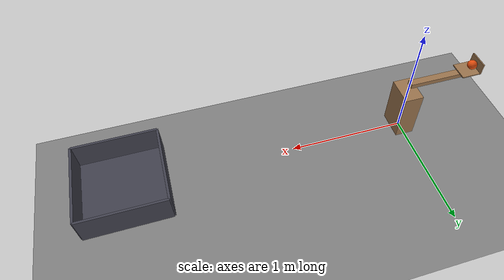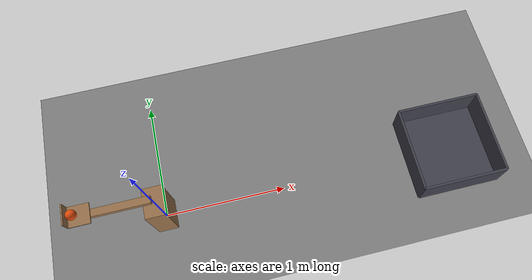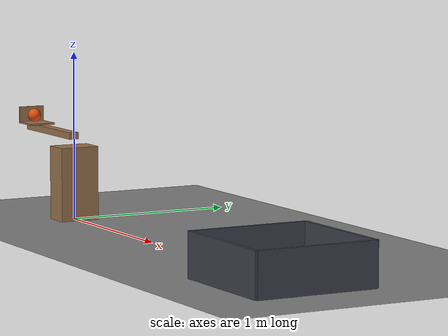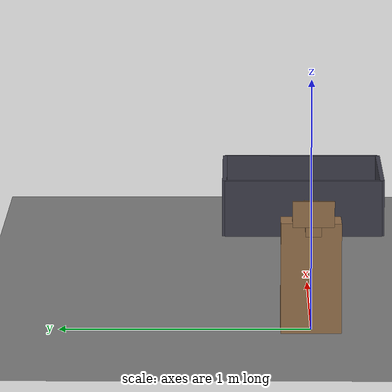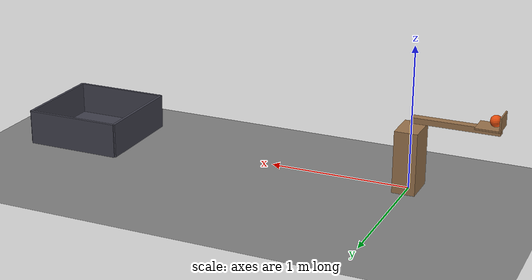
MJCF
<mujoco model="catapult_into_a_bucket">
  <compiler angle="radian"/>
  <option timestep="0.002"/>
  <worldbody>
    <geom name="floor" type="plane" size="8 8 0.1" friction="0.8 0.005 0.002"/>
    <geom name="catapult_stand" type="box" pos="0 0 0.22" size="0.08 0.12 0.22" rgba="0.6 0.45 0.3 1"/>
    <body name="catapult" pos="0 0 0.5">
      <joint name="catapult_hinge" type="hinge" pos="0 0 0" axis="0 1 0" limited="true" range="0 0.785398" stiffness="2.355" springref="3.14159" damping="0" armature="0.01"/>
      <geom name="catapult_arm" type="box" pos="-0.3 0 0" size="0.3 0.03 0.02" mass="0.5" rgba="0.6 0.45 0.3 1"/>
      <geom name="catapult_scoop_base" type="box" pos="-0.52 0 0.025" size="0.08 0.08 0.005" mass="0.02" rgba="0.6 0.45 0.3 1"/>
      <geom name="catapult_scoop_back" type="box" pos="-0.605 0 0.07" size="0.005 0.08 0.05" mass="0.01" rgba="0.6 0.45 0.3 1"/>
    </body>
    <body name="ball" pos="-0.56 0 0.57">
      <freejoint/>
      <geom name="ball" type="sphere" pos="0 0 0" size="0.04" mass="0.1" condim="6" friction="0.8 0.01 0.004" solref="0.01 1" rgba="0.9 0.3 0.05 1"/>
    </body>
    <body name="bucket">
      <geom name="bucket_base" type="box" pos="2.44 0 0.01" size="0.35 0.35 0.01" friction="0.9 0.01 0.01" solref="0.01 1" rgba="0.25 0.25 0.3 1"/>
      <geom name="bucket_near_wall" type="box" pos="2.09 0 0.125" size="0.01 0.35 0.125" friction="0.9 0.01 0.01" solref="0.01 1" rgba="0.25 0.25 0.3 1"/>
      <geom name="bucket_far_wall" type="box" pos="2.79 0 0.125" size="0.01 0.35 0.125" friction="0.9 0.01 0.01" solref="0.01 1" rgba="0.25 0.25 0.3 1"/>
      <geom name="bucket_left_wall" type="box" pos="2.44 0.35 0.125" size="0.35 0.01 0.125" friction="0.9 0.01 0.01" solref="0.01 1" rgba="0.25 0.25 0.3 1"/>
      <geom name="bucket_right_wall" type="box" pos="2.44 -0.35 0.125" size="0.35 0.01 0.125" friction="0.9 0.01 0.01" solref="0.01 1" rgba="0.25 0.25 0.3 1"/>
    </body>
  </worldbody>
  <keyframe>
    <key name="start" qpos="0 -0.56 0 0.57 1 0 0 0" qvel="0 0 0 0 0 0 0"/>
  </keyframe>
</mujoco>
